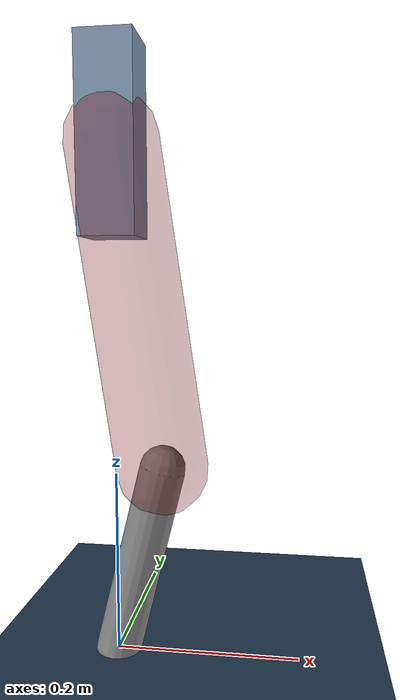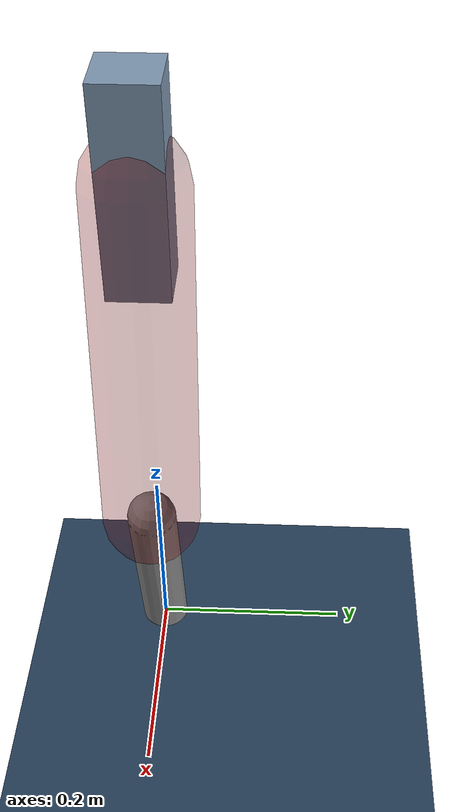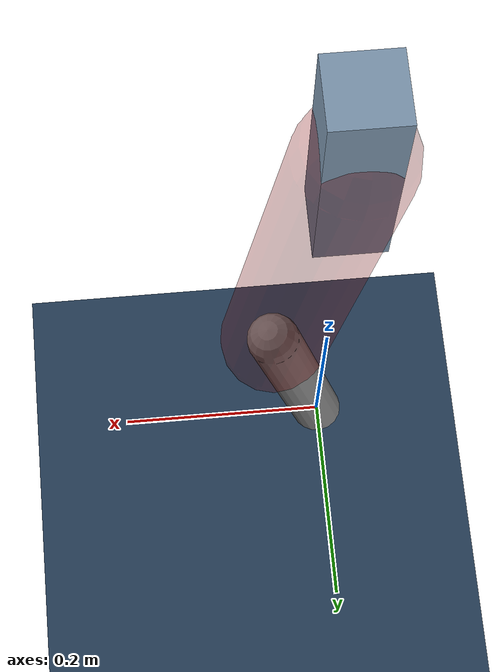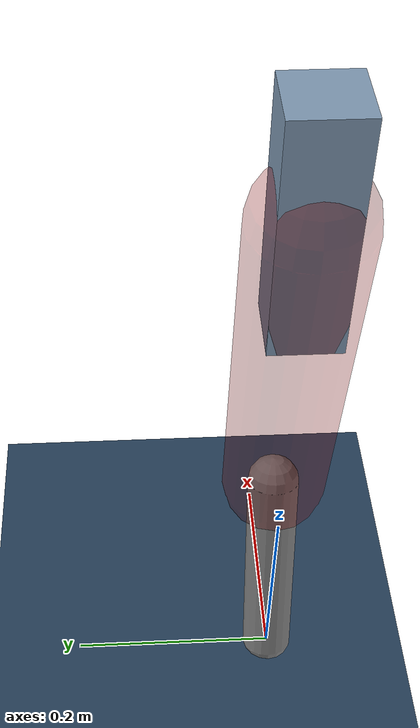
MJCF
<mujoco model="Hopper2D">
	<compiler inertiafromgeom="true" angle="radian" />
	<option timestep="0.001" integrator="implicit" cone="elliptic" solver="Newton" tolerance="1e-10" />

	<default>
		<geom contype="1" conaffinity="1" condim="3" friction="2 0.005 0.0001" solref="0.005 1" />
		<joint limited="true" damping="0.1" />
	</default>

	<asset>
		<texture name="skybox" type="skybox" builtin="gradient" rgb1=".4 .6 .8" rgb2="0 0 0" width="800" height="800" />
		<texture name="grid" type="2d" builtin="checker" rgb1=".1 .2 .3" rgb2=".2 .3 .4" width="300" height="300" mark="edge" markrgb=".2 .3 .4" />
		<material name="ground" texture="grid" texrepeat="1 1" texuniform="true" reflectance="0.1" />
		<material name="leg" rgba="0.5 0.6 0.7 1" />
	</asset>

	<worldbody>

		<geom name="floor" type="plane" size="5 5 0.25" material="ground" />

		<light directional="false" diffuse="0.8 0.8 0.8" specular="0.3 0.3 0.3" pos="0 0 2" dir="0 0 -1" />
		<light mode="targetbodycom" target="base" directional="false" diffuse="0.8 0.8 0.8" specular="0.3 0.3 0.3" pos="0 0 2" dir="0 0 -1" />

		<camera name="fixed" pos="0 -2 1" xyaxes="1 0 0 0 0 1" />
		<camera name="tracking" mode="trackcom" pos="0 -3 1" />

		<body name="root" pos="0 0 0.5539419573971639">
			<joint name="slide_x" type="slide" axis="1 0 0" range="-100 100" />
			<joint name="slide_z" type="slide" axis="0 0 1" range="0 10" />

			<body name="base" pos="0 0 0">
				<geom name="torso" type="box" size="0.03 0.03 0.1" mass="3.008" material="leg" />

				<body name="link1" pos="0 0 0" euler="0 1.4237351860234855 0">
					<joint type="hinge" axis="0 -1 0" pos="0 0 0" name="hinge1" limited="true" range="-3.14 3.14" stiffness="0" damping="0.1" />
					<geom name="thigh" type="capsule" fromto="0 0 0 0.3497921894898068 0 0" size="0.05" rgba="0.5 0 0 0.3" mass="1.1261181305714592" />

					<body name="link2" pos="0.3497921894898068 0 0" euler="0 0.38875205999558865 0">
						<joint type="hinge" axis="0 -1 0" pos="0 0 0" name="hinge2" limited="true" range="-3.14 3.14" stiffness="0" damping="0.1" />
						<geom name="shank" type="capsule" fromto="0 0 0 0.2141497679073571 0 0" size="0.025" mass="0.4128198143258857" />

					</body>
				</body>
			</body>
		</body>
	</worldbody>

	<actuator>
		<motor name="torque1" joint="hinge1" ctrlrange="-154.89191565924338 154.89191565924338" ctrllimited="true" gear="1" />
		<motor name="torque2" joint="hinge2" ctrlrange="-83.47735852703345 83.47735852703345" ctrllimited="true" gear="1" />
	</actuator>
</mujoco>
